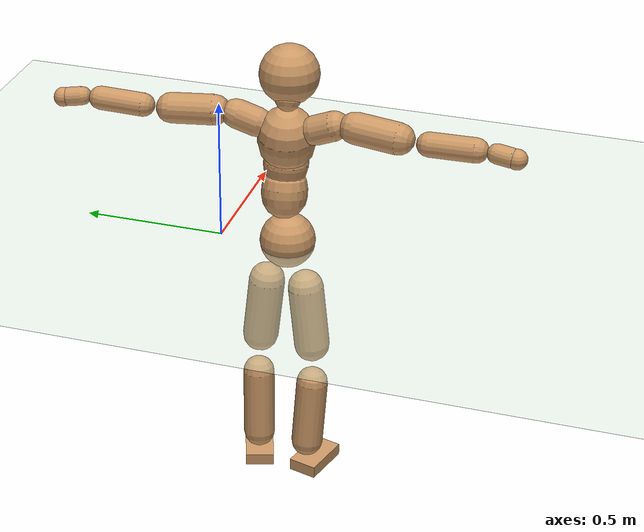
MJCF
<mujoco model="humanoid">
  <compiler coordinate="local" angle="radian"/>
  <default>
    <joint damping="0.0" armature="0.01" stiffness="0.0" limited="true"/>
    <geom conaffinity="1" condim="3" contype="7" margin="0.001" rgba="0.8 0.6 .4 1"/>
  </default>
  <asset>
    <texture type="skybox" builtin="gradient" rgb1=".4 .5 .6" rgb2="0 0 0" width="100" height="100"/>
    <texture builtin="flat" height="1278" mark="cross" markrgb="1 1 1" name="texgeom" random="0.01" rgb1="0.8 0.6 0.4" rgb2="0.8 0.6 0.4" type="cube" width="127"/>
    <texture builtin="checker" height="100" name="texplane" rgb1="0 0 0" rgb2="0.8 0.8 0.8" type="2d" width="100"/>
    <material name="MatPlane" reflectance="0.5" shininess="1" specular="1" texrepeat="60 60" texture="texplane"/>
    <material name="geom" texture="texgeom" texuniform="true"/>
  </asset>
  <worldbody>
    <light cutoff="100" diffuse="1 1 1" dir="-0 0 -1.3" directional="true" exponent="1" pos="0 0 1.3" specular=".1 .1 .1"/>
    <geom conaffinity="1" condim="3" name="floor" pos="0 0 0" rgba="0.8 0.9 0.8 1" size="100 100 .2" type="plane" material="MatPlane"/>
    <body name="Pelvis" pos="0.0007 -0.2441 0.0184">
      <freejoint name="Pelvis"/>
      <geom type="sphere" contype="1" conaffinity="1" density="500" size="0.0975" pos="0.0000 0.0000 0.0000" name="Pelvis"/>
      <body name="L_Hip" pos="-0.0216 0.0608 -0.0839">
        <joint name="L_Hip_x" type="hinge" pos="0 0 0" axis="1 0 0" stiffness="800" damping="80" armature="0.02" range="-180.0000 180.0000"/>
        <joint name="L_Hip_y" type="hinge" pos="0 0 0" axis="0 1 0" stiffness="800" damping="80" armature="0.02" range="-180.0000 180.0000"/>
        <joint name="L_Hip_z" type="hinge" pos="0 0 0" axis="0 0 1" stiffness="800" damping="80" armature="0.02" range="-180.0000 180.0000"/>
        <geom type="capsule" contype="1" conaffinity="1" density="500" fromto="0.0006 0.0084 -0.0758 0.0024 0.0336 -0.3034" size="0.0629" name="L_Hip"/>
        <body name="L_Knee" pos="0.003 0.042 -0.3792">
          <joint name="L_Knee_x" type="hinge" pos="0 0 0" axis="1 0 0" stiffness="800" damping="80" armature="0.02" range="-180.0000 180.0000"/>
          <joint name="L_Knee_y" type="hinge" pos="0 0 0" axis="0 1 0" stiffness="800" damping="80" armature="0.02" range="-180.0000 180.0000"/>
          <joint name="L_Knee_z" type="hinge" pos="0 0 0" axis="0 0 1" stiffness="800" damping="80" armature="0.02" range="-180.0000 180.0000"/>
          <geom type="capsule" contype="1" conaffinity="1" density="500" fromto="-0.0078 -0.0029 -0.0813 -0.0311 -0.0115 -0.3253" size="0.0558" name="L_Knee"/>
          <body name="L_Ankle" pos="-0.0389 -0.0143 -0.4066">
            <joint name="L_Ankle_x" type="hinge" pos="0 0 0" axis="1 0 0" stiffness="800" damping="80" armature="0.02" range="-180.0000 180.0000"/>
            <joint name="L_Ankle_y" type="hinge" pos="0 0 0" axis="0 1 0" stiffness="800" damping="80" armature="0.02" range="-180.0000 180.0000"/>
            <joint name="L_Ankle_z" type="hinge" pos="0 0 0" axis="0 0 1" stiffness="800" damping="80" armature="0.02" range="-180.0000 180.0000"/>
            <geom type="box" contype="1" conaffinity="1" density="500" pos="0.0589 0.0203 -0.0291" size="0.0849 0.051 0.0216" quat="0.9863 0.0000 0.0000 0.1652" name="L_Ankle"/>
            <body name="L_Toe" pos="0.1178 0.0406 -0.0582">
              <joint name="L_Toe_x" type="hinge" pos="0 0 0" axis="1 0 0" stiffness="500" damping="50" armature="0.02" range="-180.0000 180.0000"/>
              <joint name="L_Toe_y" type="hinge" pos="0 0 0" axis="0 1 0" stiffness="500" damping="50" armature="0.02" range="-180.0000 180.0000"/>
              <joint name="L_Toe_z" type="hinge" pos="0 0 0" axis="0 0 1" stiffness="500" damping="50" armature="0.02" range="-180.0000 180.0000"/>
              <geom type="box" contype="1" conaffinity="1" density="500" pos="0.0000 0.0000 0.0290" size="0.001 0.0025 0.0011" quat="0.9854 0.0000 0.0000 0.1700" name="L_Toe"/>
            </body>
          </body>
        </body>
      </body>
      <body name="R_Hip" pos="-0.0178 -0.0637 -0.0918">
        <joint name="R_Hip_x" type="hinge" pos="0 0 0" axis="1 0 0" stiffness="800" damping="80" armature="0.02" range="-180.0000 180.0000"/>
        <joint name="R_Hip_y" type="hinge" pos="0 0 0" axis="0 1 0" stiffness="800" damping="80" armature="0.02" range="-180.0000 180.0000"/>
        <joint name="R_Hip_z" type="hinge" pos="0 0 0" axis="0 0 1" stiffness="800" damping="80" armature="0.02" range="-180.0000 180.0000"/>
        <geom type="capsule" contype="1" conaffinity="1" density="500" fromto="-0.0017 -0.0086 -0.0753 -0.0068 -0.0346 -0.3011" size="0.0625" name="R_Hip"/>
        <body name="R_Knee" pos="-0.0085 -0.0432 -0.3764">
          <joint name="R_Knee_x" type="hinge" pos="0 0 0" axis="1 0 0" stiffness="800" damping="80" armature="0.02" range="-180.0000 180.0000"/>
          <joint name="R_Knee_y" type="hinge" pos="0 0 0" axis="0 1 0" stiffness="800" damping="80" armature="0.02" range="-180.0000 180.0000"/>
          <joint name="R_Knee_z" type="hinge" pos="0 0 0" axis="0 0 1" stiffness="800" damping="80" armature="0.02" range="-180.0000 180.0000"/>
          <geom type="capsule" contype="1" conaffinity="1" density="500" fromto="-0.0072 0.0037 -0.0801 -0.0287 0.0149 -0.3205" size="0.056" name="R_Knee"/>
          <body name="R_Ankle" pos="-0.0358 0.0186 -0.4007">
            <joint name="R_Ankle_x" type="hinge" pos="0 0 0" axis="1 0 0" stiffness="800" damping="80" armature="0.02" range="-180.0000 180.0000"/>
            <joint name="R_Ankle_y" type="hinge" pos="0 0 0" axis="0 1 0" stiffness="800" damping="80" armature="0.02" range="-180.0000 180.0000"/>
            <joint name="R_Ankle_z" type="hinge" pos="0 0 0" axis="0 0 1" stiffness="800" damping="80" armature="0.02" range="-180.0000 180.0000"/>
            <geom type="box" contype="1" conaffinity="1" density="500" pos="0.0632 -0.0167 -0.0303" size="0.0882 0.0515 0.0218" quat="0.9917 0.0000 0.0000 -0.1285" name="R_Ankle"/>
            <body name="R_Toe" pos="0.1264 -0.0333 -0.0607">
              <joint name="R_Toe_x" type="hinge" pos="0 0 0" axis="1 0 0" stiffness="500" damping="50" armature="0.02" range="-180.0000 180.0000"/>
              <joint name="R_Toe_y" type="hinge" pos="0 0 0" axis="0 1 0" stiffness="500" damping="50" armature="0.02" range="-180.0000 180.0000"/>
              <joint name="R_Toe_z" type="hinge" pos="0 0 0" axis="0 0 1" stiffness="500" damping="50" armature="0.02" range="-180.0000 180.0000"/>
              <geom type="box" contype="1" conaffinity="1" density="500" pos="0.0000 0.0000 0.0314" size="0.0011 0.0025 0.0011" quat="0.9929 0.0000 0.0000 -0.1193" name="R_Toe"/>
            </body>
          </body>
        </body>
      </body>
      <body name="Torso" pos="-0.0324 0.0042 0.1253">
        <joint name="Torso_x" type="hinge" pos="0 0 0" axis="1 0 0" stiffness="1000" damping="100" armature="0.02" range="-180.0000 180.0000"/>
        <joint name="Torso_y" type="hinge" pos="0 0 0" axis="0 1 0" stiffness="1000" damping="100" armature="0.02" range="-180.0000 180.0000"/>
        <joint name="Torso_z" type="hinge" pos="0 0 0" axis="0 0 1" stiffness="1000" damping="100" armature="0.02" range="-180.0000 180.0000"/>
        <geom type="capsule" contype="1" conaffinity="1" density="500" fromto="0.0194 0.0025 0.0850 0.0129 0.0017 0.0566" size="0.0794" name="Torso"/>
        <body name="Spine" pos="0.0323 0.0041 0.1416">
          <joint name="Spine_x" type="hinge" pos="0 0 0" axis="1 0 0" stiffness="1000" damping="100" armature="0.02" range="-180.0000 180.0000"/>
          <joint name="Spine_y" type="hinge" pos="0 0 0" axis="0 1 0" stiffness="1000" damping="100" armature="0.02" range="-180.0000 180.0000"/>
          <joint name="Spine_z" type="hinge" pos="0 0 0" axis="0 0 1" stiffness="1000" damping="100" armature="0.02" range="-180.0000 180.0000"/>
          <geom type="capsule" contype="1" conaffinity="1" density="500" fromto="0.0028 -0.0018 0.0341 0.0019 -0.0012 0.0227" size="0.0781" name="Spine"/>
          <body name="Chest" pos="0.0047 -0.003 0.0568">
            <joint name="Chest_x" type="hinge" pos="0 0 0" axis="1 0 0" stiffness="1000" damping="100" armature="0.02" range="-180.0000 180.0000"/>
            <joint name="Chest_y" type="hinge" pos="0 0 0" axis="0 1 0" stiffness="1000" damping="100" armature="0.02" range="-180.0000 180.0000"/>
            <joint name="Chest_z" type="hinge" pos="0 0 0" axis="0 0 1" stiffness="1000" damping="100" armature="0.02" range="-180.0000 180.0000"/>
            <geom type="capsule" contype="1" conaffinity="1" density="500" fromto="-0.0140 -0.0050 0.0846 -0.0093 -0.0033 0.0564" size="0.0993" name="Chest"/>
            <body name="Neck" pos="-0.0313 -0.0126 0.2034">
              <joint name="Neck_x" type="hinge" pos="0 0 0" axis="1 0 0" stiffness="500" damping="50" armature="0.02" range="-180.0000 180.0000"/>
              <joint name="Neck_y" type="hinge" pos="0 0 0" axis="0 1 0" stiffness="500" damping="50" armature="0.02" range="-180.0000 180.0000"/>
              <joint name="Neck_z" type="hinge" pos="0 0 0" axis="0 0 1" stiffness="500" damping="50" armature="0.02" range="-180.0000 180.0000"/>
              <geom type="capsule" contype="1" conaffinity="1" density="500" fromto="0.0102 0.0019 0.0177 0.0409 0.0075 0.0706" size="0.0442" name="Neck"/>
              <body name="Head" pos="0.0511 0.0093 0.0883">
                <joint name="Head_x" type="hinge" pos="0 0 0" axis="1 0 0" stiffness="500" damping="50" armature="0.02" range="-180.0000 180.0000"/>
                <joint name="Head_y" type="hinge" pos="0 0 0" axis="0 1 0" stiffness="500" damping="50" armature="0.02" range="-180.0000 180.0000"/>
                <joint name="Head_z" type="hinge" pos="0 0 0" axis="0 0 1" stiffness="500" damping="50" armature="0.02" range="-180.0000 180.0000"/>
                <geom type="sphere" contype="1" conaffinity="1" density="500" size="0.1033" pos="0.0000 0.0000 0.0000" name="Head"/>
              </body>
            </body>
            <body name="L_Thorax" pos="-0.0174 0.0715 0.11">
              <joint name="L_Thorax_x" type="hinge" pos="0 0 0" axis="1 0 0" stiffness="500" damping="50" armature="0.02" range="-180.0000 180.0000"/>
              <joint name="L_Thorax_y" type="hinge" pos="0 0 0" axis="0 1 0" stiffness="500" damping="50" armature="0.02" range="-180.0000 180.0000"/>
              <joint name="L_Thorax_z" type="hinge" pos="0 0 0" axis="0 0 1" stiffness="500" damping="50" armature="0.02" range="-180.0000 180.0000"/>
              <geom type="capsule" contype="1" conaffinity="1" density="500" fromto="-0.0038 0.0239 0.0091 -0.0151 0.0958 0.0365" size="0.0505" name="L_Thorax"/>
              <body name="L_Shoulder" pos="-0.0188 0.1197 0.0456">
                <joint name="L_Shoulder_x" type="hinge" pos="0 0 0" axis="1 0 0" stiffness="500" damping="50" armature="0.02" range="-720.0000 720.0000"/>
                <joint name="L_Shoulder_y" type="hinge" pos="0 0 0" axis="0 1 0" stiffness="500" damping="50" armature="0.02" range="-720.0000 720.0000"/>
                <joint name="L_Shoulder_z" type="hinge" pos="0 0 0" axis="0 0 1" stiffness="500" damping="50" armature="0.02" range="-720.0000 720.0000"/>
                <geom type="capsule" contype="1" conaffinity="1" density="500" fromto="-0.0036 0.0502 -0.0031 -0.0145 0.2006 -0.0123" size="0.0528" name="L_Shoulder"/>
                <body name="L_Elbow" pos="-0.0182 0.2508 -0.0154">
                  <joint name="L_Elbow_x" type="hinge" pos="0 0 0" axis="1 0 0" stiffness="500" damping="50" armature="0.02" range="-720.0000 720.0000"/>
                  <joint name="L_Elbow_y" type="hinge" pos="0 0 0" axis="0 1 0" stiffness="500" damping="50" armature="0.02" range="-720.0000 720.0000"/>
                  <joint name="L_Elbow_z" type="hinge" pos="0 0 0" axis="0 0 1" stiffness="500" damping="50" armature="0.02" range="-720.0000 720.0000"/>
                  <geom type="capsule" contype="1" conaffinity="1" density="500" fromto="-0.0018 0.0506 0.0022 -0.0073 0.2024 0.0089" size="0.0408" name="L_Elbow"/>
                  <body name="L_Wrist" pos="-0.0092 0.253 0.0112">
                    <joint name="L_Wrist_x" type="hinge" pos="0 0 0" axis="1 0 0" stiffness="300" damping="30" armature="0.02" range="-180.0000 180.0000"/>
                    <joint name="L_Wrist_y" type="hinge" pos="0 0 0" axis="0 1 0" stiffness="300" damping="30" armature="0.02" range="-180.0000 180.0000"/>
                    <joint name="L_Wrist_z" type="hinge" pos="0 0 0" axis="0 0 1" stiffness="300" damping="30" armature="0.02" range="-180.0000 180.0000"/>
                    <geom type="capsule" contype="1" conaffinity="1" density="500" fromto="-0.0029 0.0162 -0.0020 -0.0117 0.0648 -0.0080" size="0.0322" name="L_Wrist"/>
                    <body name="L_Hand" pos="-0.0146 0.081 -0.01">
                      <joint name="L_Hand_x" type="hinge" pos="0 0 0" axis="1 0 0" stiffness="300" damping="30" armature="0.02" range="-180.0000 180.0000"/>
                      <joint name="L_Hand_y" type="hinge" pos="0 0 0" axis="0 1 0" stiffness="300" damping="30" armature="0.02" range="-180.0000 180.0000"/>
                      <joint name="L_Hand_z" type="hinge" pos="0 0 0" axis="0 0 1" stiffness="300" damping="30" armature="0.02" range="-180.0000 180.0000"/>
                      <geom type="sphere" contype="1" conaffinity="1" density="500" size="0.0334" pos="0.0000 0.0000 0.0000" name="L_Hand"/>
                    </body>
                  </body>
                </body>
              </body>
            </body>
            <body name="R_Thorax" pos="-0.0213 -0.0839 0.1094">
              <joint name="R_Thorax_x" type="hinge" pos="0 0 0" axis="1 0 0" stiffness="500" damping="50" armature="0.02" range="-180.0000 180.0000"/>
              <joint name="R_Thorax_y" type="hinge" pos="0 0 0" axis="0 1 0" stiffness="500" damping="50" armature="0.02" range="-180.0000 180.0000"/>
              <joint name="R_Thorax_z" type="hinge" pos="0 0 0" axis="0 0 1" stiffness="500" damping="50" armature="0.02" range="-180.0000 180.0000"/>
              <geom type="capsule" contype="1" conaffinity="1" density="500" fromto="-0.0016 -0.0225 0.0094 -0.0064 -0.0901 0.0378" size="0.0511" name="R_Thorax"/>
              <body name="R_Shoulder" pos="-0.0079 -0.1126 0.0472">
                <joint name="R_Shoulder_x" type="hinge" pos="0 0 0" axis="1 0 0" stiffness="500" damping="50" armature="0.02" range="-720.0000 720.0000"/>
                <joint name="R_Shoulder_y" type="hinge" pos="0 0 0" axis="0 1 0" stiffness="500" damping="50" armature="0.02" range="-720.0000 720.0000"/>
                <joint name="R_Shoulder_z" type="hinge" pos="0 0 0" axis="0 0 1" stiffness="500" damping="50" armature="0.02" range="-720.0000 720.0000"/>
                <geom type="capsule" contype="1" conaffinity="1" density="500" fromto="-0.0056 -0.0511 -0.0030 -0.0222 -0.2044 -0.0118" size="0.0543" name="R_Shoulder"/>
                <body name="R_Elbow" pos="-0.0278 -0.2555 -0.0148">
                  <joint name="R_Elbow_x" type="hinge" pos="0 0 0" axis="1 0 0" stiffness="500" damping="50" armature="0.02" range="-720.0000 720.0000"/>
                  <joint name="R_Elbow_y" type="hinge" pos="0 0 0" axis="0 1 0" stiffness="500" damping="50" armature="0.02" range="-720.0000 720.0000"/>
                  <joint name="R_Elbow_z" type="hinge" pos="0 0 0" axis="0 0 1" stiffness="500" damping="50" armature="0.02" range="-720.0000 720.0000"/>
                  <geom type="capsule" contype="1" conaffinity="1" density="500" fromto="-0.0015 -0.0523 0.0015 -0.0059 -0.2091 0.0061" size="0.0422" name="R_Elbow"/>
                  <body name="R_Wrist" pos="-0.0074 -0.2613 0.0077">
                    <joint name="R_Wrist_x" type="hinge" pos="0 0 0" axis="1 0 0" stiffness="300" damping="30" armature="0.02" range="-180.0000 180.0000"/>
                    <joint name="R_Wrist_y" type="hinge" pos="0 0 0" axis="0 1 0" stiffness="300" damping="30" armature="0.02" range="-180.0000 180.0000"/>
                    <joint name="R_Wrist_z" type="hinge" pos="0 0 0" axis="0 0 1" stiffness="300" damping="30" armature="0.02" range="-180.0000 180.0000"/>
                    <geom type="capsule" contype="1" conaffinity="1" density="500" fromto="-0.0019 -0.0170 -0.0016 -0.0077 -0.0680 -0.0066" size="0.0336" name="R_Wrist"/>
                    <body name="R_Hand" pos="-0.0096 -0.085 -0.0082">
                      <joint name="R_Hand_x" type="hinge" pos="0 0 0" axis="1 0 0" stiffness="300" damping="30" armature="0.02" range="-180.0000 180.0000"/>
                      <joint name="R_Hand_y" type="hinge" pos="0 0 0" axis="0 1 0" stiffness="300" damping="30" armature="0.02" range="-180.0000 180.0000"/>
                      <joint name="R_Hand_z" type="hinge" pos="0 0 0" axis="0 0 1" stiffness="300" damping="30" armature="0.02" range="-180.0000 180.0000"/>
                      <geom type="sphere" contype="1" conaffinity="1" density="500" size="0.0347" pos="0.0000 0.0000 0.0000" name="R_Hand"/>
                    </body>
                  </body>
                </body>
              </body>
            </body>
          </body>
        </body>
      </body>
    </body>
  </worldbody>
  <actuator>
    <motor name="L_Hip_x" joint="L_Hip_x" gear="500"/>
    <motor name="L_Hip_y" joint="L_Hip_y" gear="500"/>
    <motor name="L_Hip_z" joint="L_Hip_z" gear="500"/>
    <motor name="L_Knee_x" joint="L_Knee_x" gear="500"/>
    <motor name="L_Knee_y" joint="L_Knee_y" gear="500"/>
    <motor name="L_Knee_z" joint="L_Knee_z" gear="500"/>
    <motor name="L_Ankle_x" joint="L_Ankle_x" gear="500"/>
    <motor name="L_Ankle_y" joint="L_Ankle_y" gear="500"/>
    <motor name="L_Ankle_z" joint="L_Ankle_z" gear="500"/>
    <motor name="L_Toe_x" joint="L_Toe_x" gear="500"/>
    <motor name="L_Toe_y" joint="L_Toe_y" gear="500"/>
    <motor name="L_Toe_z" joint="L_Toe_z" gear="500"/>
    <motor name="R_Hip_x" joint="R_Hip_x" gear="500"/>
    <motor name="R_Hip_y" joint="R_Hip_y" gear="500"/>
    <motor name="R_Hip_z" joint="R_Hip_z" gear="500"/>
    <motor name="R_Knee_x" joint="R_Knee_x" gear="500"/>
    <motor name="R_Knee_y" joint="R_Knee_y" gear="500"/>
    <motor name="R_Knee_z" joint="R_Knee_z" gear="500"/>
    <motor name="R_Ankle_x" joint="R_Ankle_x" gear="500"/>
    <motor name="R_Ankle_y" joint="R_Ankle_y" gear="500"/>
    <motor name="R_Ankle_z" joint="R_Ankle_z" gear="500"/>
    <motor name="R_Toe_x" joint="R_Toe_x" gear="500"/>
    <motor name="R_Toe_y" joint="R_Toe_y" gear="500"/>
    <motor name="R_Toe_z" joint="R_Toe_z" gear="500"/>
    <motor name="Torso_x" joint="Torso_x" gear="500"/>
    <motor name="Torso_y" joint="Torso_y" gear="500"/>
    <motor name="Torso_z" joint="Torso_z" gear="500"/>
    <motor name="Spine_x" joint="Spine_x" gear="500"/>
    <motor name="Spine_y" joint="Spine_y" gear="500"/>
    <motor name="Spine_z" joint="Spine_z" gear="500"/>
    <motor name="Chest_x" joint="Chest_x" gear="500"/>
    <motor name="Chest_y" joint="Chest_y" gear="500"/>
    <motor name="Chest_z" joint="Chest_z" gear="500"/>
    <motor name="Neck_x" joint="Neck_x" gear="500"/>
    <motor name="Neck_y" joint="Neck_y" gear="500"/>
    <motor name="Neck_z" joint="Neck_z" gear="500"/>
    <motor name="Head_x" joint="Head_x" gear="500"/>
    <motor name="Head_y" joint="Head_y" gear="500"/>
    <motor name="Head_z" joint="Head_z" gear="500"/>
    <motor name="L_Thorax_x" joint="L_Thorax_x" gear="500"/>
    <motor name="L_Thorax_y" joint="L_Thorax_y" gear="500"/>
    <motor name="L_Thorax_z" joint="L_Thorax_z" gear="500"/>
    <motor name="L_Shoulder_x" joint="L_Shoulder_x" gear="500"/>
    <motor name="L_Shoulder_y" joint="L_Shoulder_y" gear="500"/>
    <motor name="L_Shoulder_z" joint="L_Shoulder_z" gear="500"/>
    <motor name="L_Elbow_x" joint="L_Elbow_x" gear="500"/>
    <motor name="L_Elbow_y" joint="L_Elbow_y" gear="500"/>
    <motor name="L_Elbow_z" joint="L_Elbow_z" gear="500"/>
    <motor name="L_Wrist_x" joint="L_Wrist_x" gear="500"/>
    <motor name="L_Wrist_y" joint="L_Wrist_y" gear="500"/>
    <motor name="L_Wrist_z" joint="L_Wrist_z" gear="500"/>
    <motor name="L_Hand_x" joint="L_Hand_x" gear="500"/>
    <motor name="L_Hand_y" joint="L_Hand_y" gear="500"/>
    <motor name="L_Hand_z" joint="L_Hand_z" gear="500"/>
    <motor name="R_Thorax_x" joint="R_Thorax_x" gear="500"/>
    <motor name="R_Thorax_y" joint="R_Thorax_y" gear="500"/>
    <motor name="R_Thorax_z" joint="R_Thorax_z" gear="500"/>
    <motor name="R_Shoulder_x" joint="R_Shoulder_x" gear="500"/>
    <motor name="R_Shoulder_y" joint="R_Shoulder_y" gear="500"/>
    <motor name="R_Shoulder_z" joint="R_Shoulder_z" gear="500"/>
    <motor name="R_Elbow_x" joint="R_Elbow_x" gear="500"/>
    <motor name="R_Elbow_y" joint="R_Elbow_y" gear="500"/>
    <motor name="R_Elbow_z" joint="R_Elbow_z" gear="500"/>
    <motor name="R_Wrist_x" joint="R_Wrist_x" gear="500"/>
    <motor name="R_Wrist_y" joint="R_Wrist_y" gear="500"/>
    <motor name="R_Wrist_z" joint="R_Wrist_z" gear="500"/>
    <motor name="R_Hand_x" joint="R_Hand_x" gear="500"/>
    <motor name="R_Hand_y" joint="R_Hand_y" gear="500"/>
    <motor name="R_Hand_z" joint="R_Hand_z" gear="500"/>
  </actuator>
  <contact>
    <exclude body1="Torso" body2="Chest"/>
    <exclude body1="Head" body2="Chest"/>
    <exclude body1="R_Knee" body2="R_Toe"/>
    <exclude body1="R_Knee" body2="L_Ankle"/>
    <exclude body1="R_Knee" body2="L_Toe"/>
    <exclude body1="L_Knee" body2="L_Toe"/>
    <exclude body1="L_Knee" body2="R_Ankle"/>
    <exclude body1="L_Knee" body2="R_Toe"/>
    <exclude body1="L_Shoulder" body2="Chest"/>
    <exclude body1="R_Shoulder" body2="Chest"/>
  </contact>
  <sensor/>
  <size njmax="700" nconmax="700"/>
</mujoco>
